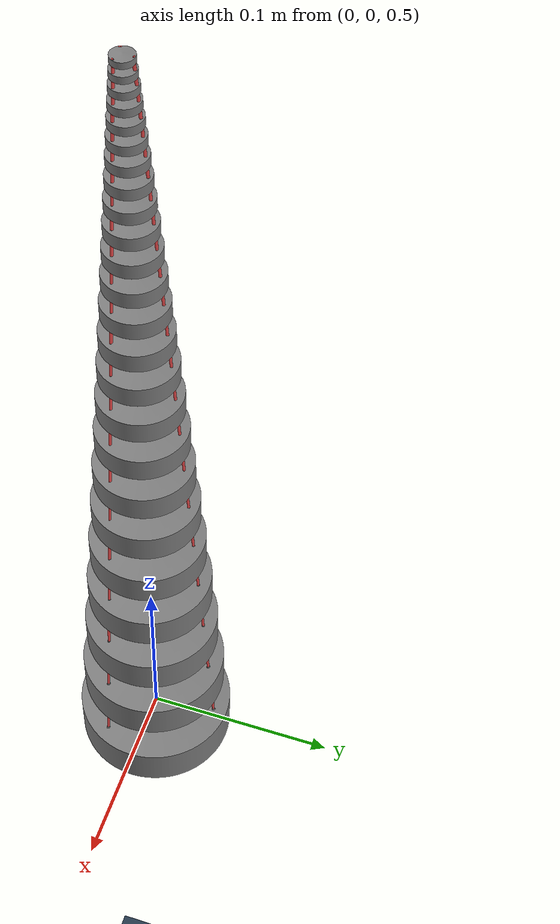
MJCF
<mujoco model="spiral_robot">
  <compiler angle="radian"/>
  <option gravity="0 0 0"/>
  <asset>
    <mesh name="baselink_1" file="baselink.stl" scale="0.001000000 0.001000000 0.001000000"/>
    <mesh name="baselink_2" file="baselink.stl" scale="0.000911774 0.000911774 0.000911774"/>
    <mesh name="baselink_3" file="baselink.stl" scale="0.000831332 0.000831332 0.000831332"/>
    <mesh name="baselink_4" file="baselink.stl" scale="0.000757987 0.000757987 0.000757987"/>
    <mesh name="baselink_5" file="baselink.stl" scale="0.000691113 0.000691113 0.000691113"/>
    <mesh name="baselink_6" file="baselink.stl" scale="0.000630139 0.000630139 0.000630139"/>
    <mesh name="baselink_7" file="baselink.stl" scale="0.000574545 0.000574545 0.000574545"/>
    <mesh name="baselink_8" file="baselink.stl" scale="0.000523855 0.000523855 0.000523855"/>
    <mesh name="baselink_9" file="baselink.stl" scale="0.000477638 0.000477638 0.000477638"/>
    <mesh name="baselink_10" file="baselink.stl" scale="0.000435498 0.000435498 0.000435498"/>
    <mesh name="baselink_11" file="baselink.stl" scale="0.000397076 0.000397076 0.000397076"/>
    <mesh name="baselink_12" file="baselink.stl" scale="0.000362043 0.000362043 0.000362043"/>
    <mesh name="baselink_13" file="baselink.stl" scale="0.000330102 0.000330102 0.000330102"/>
    <mesh name="baselink_14" file="baselink.stl" scale="0.000300978 0.000300978 0.000300978"/>
    <mesh name="baselink_15" file="baselink.stl" scale="0.000274424 0.000274424 0.000274424"/>
    <mesh name="baselink_16" file="baselink.stl" scale="0.000250213 0.000250213 0.000250213"/>
    <mesh name="baselink_17" file="baselink.stl" scale="0.000228138 0.000228138 0.000228138"/>
    <mesh name="baselink_18" file="baselink.stl" scale="0.000208010 0.000208010 0.000208010"/>
    <mesh name="baselink_19" file="baselink.stl" scale="0.000189658 0.000189658 0.000189658"/>
    <mesh name="baselink_20" file="baselink.stl" scale="0.000172926 0.000172926 0.000172926"/>
    <mesh name="baselink_21" file="baselink.stl" scale="0.000157669 0.000157669 0.000157669"/>
    <mesh name="baselink_22" file="baselink.stl" scale="0.000143759 0.000143759 0.000143759"/>
    <mesh name="baselink_23" file="baselink.stl" scale="0.000131075 0.000131075 0.000131075"/>
    <mesh name="baselink_24" file="baselink.stl" scale="0.000119511 0.000119511 0.000119511"/>
    <texture name="texplane" type="2d" builtin="checker" rgb1=".2 .3 .4" rgb2=".1 0.15 0.2" width="512" height="512" mark="cross" markrgb=".8 .8 .8"/>
    <material name="matplane" reflectance="0.3" texture="texplane" texrepeat="1 1" texuniform="true"/>
  </asset>
  <worldbody>
    <geom name="ground" type="plane" size="10 10 1" pos="0 0 0" quat="1 0 0 0" material="matplane" condim="1"/>
    <light pos="1 0.5 0.7" dir="-1 -0.5 -1" directional="true" castshadow="false" diffuse="1 1 1" specular="0.3 0.3 0.3"/>
    <body name="link1" pos="0 0 0.464082120">
      <geom type="mesh" mesh="baselink_1"/>
      <site name="s1_1" pos="0.000000000 0.036394210 0.016795002" size="0.001000 0.001000 0.001000"/>
      <site name="s1_2" pos="0.000000000 0.034423562 0.042801474" size="0.001000 0.001000 0.001000"/>
      <site name="s1_3" pos="-0.031518310 -0.018197105 0.016795002" size="0.001000 0.001000 0.001000"/>
      <site name="s1_4" pos="-0.029811679 -0.017211781 0.042801474" size="0.001000 0.001000 0.001000"/>
      <site name="s1_5" pos="0.031518310 -0.018197105 0.016795002" size="0.001000 0.001000 0.001000"/>
      <site name="s1_6" pos="0.029811679 -0.017211781 0.042801474" size="0.001000 0.001000 0.001000"/>
      <body name="link2" pos="0 0 0.045951152">
        <joint type="ball" stiffness="0.040000" damping="0.020000"/>
        <geom type="mesh" mesh="baselink_2"/>
        <site name="s2_1" pos="0.000000000 0.033183304 0.015313251" size="0.000912 0.000912 0.000912"/>
        <site name="s2_2" pos="0.000000000 0.031386518 0.039025283" size="0.000912 0.000912 0.000912"/>
        <site name="s2_3" pos="-0.028737585 -0.016591652 0.015313251" size="0.000912 0.000912 0.000912"/>
        <site name="s2_4" pos="-0.027181522 -0.015693259 0.039025283" size="0.000912 0.000912 0.000912"/>
        <site name="s2_5" pos="0.028737585 -0.016591652 0.015313251" size="0.000912 0.000912 0.000912"/>
        <site name="s2_6" pos="0.027181522 -0.015693259 0.039025283" size="0.000912 0.000912 0.000912"/>
      <body name="link3" pos="0 0 0.041897079">
        <joint type="ball" stiffness="0.033253" damping="0.018235"/>
        <geom type="mesh" mesh="baselink_3"/>
        <site name="s3_1" pos="0.000000000 0.030255683 0.013962228" size="0.000831 0.000831 0.000831"/>
        <site name="s3_2" pos="0.000000000 0.028617420 0.035582249" size="0.000831 0.000831 0.000831"/>
        <site name="s3_3" pos="-0.026202190 -0.015127842 0.013962228" size="0.000831 0.000831 0.000831"/>
        <site name="s3_4" pos="-0.024783413 -0.014308710 0.035582249" size="0.000831 0.000831 0.000831"/>
        <site name="s3_5" pos="0.026202190 -0.015127842 0.013962228" size="0.000831 0.000831 0.000831"/>
        <site name="s3_6" pos="0.024783413 -0.014308710 0.035582249" size="0.000831 0.000831 0.000831"/>
      <body name="link4" pos="0 0 0.038200679">
        <joint type="ball" stiffness="0.027645" damping="0.016627"/>
        <geom type="mesh" mesh="baselink_4"/>
        <site name="s4_1" pos="0.000000000 0.027586354 0.012730400" size="0.000758 0.000758 0.000758"/>
        <site name="s4_2" pos="0.000000000 0.026092627 0.032442980" size="0.000758 0.000758 0.000758"/>
        <site name="s4_3" pos="-0.023890483 -0.013793177 0.012730400" size="0.000758 0.000758 0.000758"/>
        <site name="s4_4" pos="-0.022596878 -0.013046314 0.032442980" size="0.000758 0.000758 0.000758"/>
        <site name="s4_5" pos="0.023890483 -0.013793177 0.012730400" size="0.000758 0.000758 0.000758"/>
        <site name="s4_6" pos="0.022596878 -0.013046314 0.032442980" size="0.000758 0.000758 0.000758"/>
      <body name="link5" pos="0 0 0.034830396">
        <joint type="ball" stiffness="0.022982" damping="0.015160"/>
        <geom type="mesh" mesh="baselink_5"/>
        <site name="s5_1" pos="0.000000000 0.025152528 0.011607252" size="0.000691 0.000691 0.000691"/>
        <site name="s5_2" pos="0.000000000 0.023790586 0.029580674" size="0.000691 0.000691 0.000691"/>
        <site name="s5_3" pos="-0.021782728 -0.012576264 0.011607252" size="0.000691 0.000691 0.000691"/>
        <site name="s5_4" pos="-0.020603252 -0.011895293 0.029580674" size="0.000691 0.000691 0.000691"/>
        <site name="s5_5" pos="0.021782728 -0.012576264 0.011607252" size="0.000691 0.000691 0.000691"/>
        <site name="s5_6" pos="0.020603252 -0.011895293 0.029580674" size="0.000691 0.000691 0.000691"/>
      <body name="link6" pos="0 0 0.031757459">
        <joint type="ball" stiffness="0.019106" damping="0.013822"/>
        <geom type="mesh" mesh="baselink_6"/>
        <site name="s6_1" pos="0.000000000 0.022933428 0.010583193" size="0.000630 0.000630 0.000630"/>
        <site name="s6_2" pos="0.000000000 0.021691645 0.026970898" size="0.000630 0.000630 0.000630"/>
        <site name="s6_3" pos="-0.019860931 -0.011466714 0.010583193" size="0.000630 0.000630 0.000630"/>
        <site name="s6_4" pos="-0.018785515 -0.010845822 0.026970898" size="0.000630 0.000630 0.000630"/>
        <site name="s6_5" pos="0.019860931 -0.011466714 0.010583193" size="0.000630 0.000630 0.000630"/>
        <site name="s6_6" pos="0.018785515 -0.010845822 0.026970898" size="0.000630 0.000630 0.000630"/>
      <body name="link7" pos="0 0 0.028955634">
        <joint type="ball" stiffness="0.015883" damping="0.012603"/>
        <geom type="mesh" mesh="baselink_7"/>
        <site name="s7_1" pos="0.000000000 0.020910109 0.009649483" size="0.000575 0.000575 0.000575"/>
        <site name="s7_2" pos="0.000000000 0.019777884 0.024591371" size="0.000575 0.000575 0.000575"/>
        <site name="s7_3" pos="-0.018108686 -0.010455055 0.009649483" size="0.000575 0.000575 0.000575"/>
        <site name="s7_4" pos="-0.017128150 -0.009888942 0.024591371" size="0.000575 0.000575 0.000575"/>
        <site name="s7_5" pos="0.018108686 -0.010455055 0.009649483" size="0.000575 0.000575 0.000575"/>
        <site name="s7_6" pos="0.017128150 -0.009888942 0.024591371" size="0.000575 0.000575 0.000575"/>
      <body name="link8" pos="0 0 0.026401003">
        <joint type="ball" stiffness="0.013204" damping="0.011491"/>
        <geom type="mesh" mesh="baselink_8"/>
        <site name="s8_1" pos="0.000000000 0.019065300 0.008798151" size="0.000524 0.000524 0.000524"/>
        <site name="s8_2" pos="0.000000000 0.018032965 0.022421779" size="0.000524 0.000524 0.000524"/>
        <site name="s8_3" pos="-0.016511034 -0.009532650 0.008798151" size="0.000524 0.000524 0.000524"/>
        <site name="s8_4" pos="-0.015617006 -0.009016483 0.022421779" size="0.000524 0.000524 0.000524"/>
        <site name="s8_5" pos="0.016511034 -0.009532650 0.008798151" size="0.000524 0.000524 0.000524"/>
        <site name="s8_6" pos="0.015617006 -0.009016483 0.022421779" size="0.000524 0.000524 0.000524"/>
      <body name="link9" pos="0 0 0.024071755">
        <joint type="ball" stiffness="0.010977" damping="0.010477"/>
        <geom type="mesh" mesh="baselink_9"/>
        <site name="s9_1" pos="0.000000000 0.017383250 0.008021928" size="0.000478 0.000478 0.000478"/>
        <site name="s9_2" pos="0.000000000 0.016441994 0.020443602" size="0.000478 0.000478 0.000478"/>
        <site name="s9_3" pos="-0.015054336 -0.008691625 0.008021928" size="0.000478 0.000478 0.000478"/>
        <site name="s9_4" pos="-0.014239185 -0.008220997 0.020443602" size="0.000478 0.000478 0.000478"/>
        <site name="s9_5" pos="0.015054336 -0.008691625 0.008021928" size="0.000478 0.000478 0.000478"/>
        <site name="s9_6" pos="0.014239185 -0.008220997 0.020443602" size="0.000478 0.000478 0.000478"/>
      <body name="link10" pos="0 0 0.021948007">
        <joint type="ball" stiffness="0.009126" damping="0.009553"/>
        <geom type="mesh" mesh="baselink_10"/>
        <site name="s10_1" pos="0.000000000 0.015849600 0.007314187" size="0.000435 0.000435 0.000435"/>
        <site name="s10_2" pos="0.000000000 0.014991387 0.018639950" size="0.000435 0.000435 0.000435"/>
        <site name="s10_3" pos="-0.013726156 -0.007924800 0.007314187" size="0.000435 0.000435 0.000435"/>
        <site name="s10_4" pos="-0.012982922 -0.007495694 0.018639950" size="0.000435 0.000435 0.000435"/>
        <site name="s10_5" pos="0.013726156 -0.007924800 0.007314187" size="0.000435 0.000435 0.000435"/>
        <site name="s10_6" pos="0.012982922 -0.007495694 0.018639950" size="0.000435 0.000435 0.000435"/>
      <body name="link11" pos="0 0 0.020011628">
        <joint type="ball" stiffness="0.007586" damping="0.008710"/>
        <geom type="mesh" mesh="baselink_11"/>
        <site name="s11_1" pos="0.000000000 0.014451258 0.006668888" size="0.000397 0.000397 0.000397"/>
        <site name="s11_2" pos="0.000000000 0.013668761 0.016995427" size="0.000397 0.000397 0.000397"/>
        <site name="s11_3" pos="-0.012515156 -0.007225629 0.006668888" size="0.000397 0.000397 0.000397"/>
        <site name="s11_4" pos="-0.011837494 -0.006834381 0.016995427" size="0.000397 0.000397 0.000397"/>
        <site name="s11_5" pos="0.012515156 -0.007225629 0.006668888" size="0.000397 0.000397 0.000397"/>
        <site name="s11_6" pos="0.011837494 -0.006834381 0.016995427" size="0.000397 0.000397 0.000397"/>
      <body name="link12" pos="0 0 0.018246088">
        <joint type="ball" stiffness="0.006307" damping="0.007942"/>
        <geom type="mesh" mesh="baselink_12"/>
        <site name="s12_1" pos="0.000000000 0.013176285 0.006080520" size="0.000362 0.000362 0.000362"/>
        <site name="s12_2" pos="0.000000000 0.012462825 0.015495993" size="0.000362 0.000362 0.000362"/>
        <site name="s12_3" pos="-0.011410998 -0.006588143 0.006080520" size="0.000362 0.000362 0.000362"/>
        <site name="s12_4" pos="-0.010793123 -0.006231412 0.015495993" size="0.000362 0.000362 0.000362"/>
        <site name="s12_5" pos="0.011410998 -0.006588143 0.006080520" size="0.000362 0.000362 0.000362"/>
        <site name="s12_6" pos="0.010793123 -0.006231412 0.015495993" size="0.000362 0.000362 0.000362"/>
      <body name="link13" pos="0 0 0.016636313">
        <joint type="ball" stiffness="0.005243" damping="0.007241"/>
        <geom type="mesh" mesh="baselink_13"/>
        <site name="s13_1" pos="0.000000000 0.012013798 0.005544062" size="0.000330 0.000330 0.000330"/>
        <site name="s13_2" pos="0.000000000 0.011363283 0.014128848" size="0.000330 0.000330 0.000330"/>
        <site name="s13_3" pos="-0.010404254 -0.006006899 0.005544062" size="0.000330 0.000330 0.000330"/>
        <site name="s13_4" pos="-0.009840892 -0.005681642 0.014128848" size="0.000330 0.000330 0.000330"/>
        <site name="s13_5" pos="0.010404254 -0.006006899 0.005544062" size="0.000330 0.000330 0.000330"/>
        <site name="s13_6" pos="0.009840892 -0.005681642 0.014128848" size="0.000330 0.000330 0.000330"/>
      <body name="link14" pos="0 0 0.015168563">
        <joint type="ball" stiffness="0.004359" damping="0.006602"/>
        <geom type="mesh" mesh="baselink_14"/>
        <site name="s14_1" pos="0.000000000 0.010953872 0.005054933" size="0.000301 0.000301 0.000301"/>
        <site name="s14_2" pos="0.000000000 0.010360749 0.012882320" size="0.000301 0.000301 0.000301"/>
        <site name="s14_3" pos="-0.009486331 -0.005476936 0.005054933" size="0.000301 0.000301 0.000301"/>
        <site name="s14_4" pos="-0.008972672 -0.005180375 0.012882320" size="0.000301 0.000301 0.000301"/>
        <site name="s14_5" pos="0.009486331 -0.005476936 0.005054933" size="0.000301 0.000301 0.000301"/>
        <site name="s14_6" pos="0.008972672 -0.005180375 0.012882320" size="0.000301 0.000301 0.000301"/>
      <body name="link15" pos="0 0 0.013830305">
        <joint type="ball" stiffness="0.003624" damping="0.006020"/>
        <geom type="mesh" mesh="baselink_15"/>
        <site name="s15_1" pos="0.000000000 0.009987459 0.004608958" size="0.000274 0.000274 0.000274"/>
        <site name="s15_2" pos="0.000000000 0.009446665 0.011745768" size="0.000274 0.000274 0.000274"/>
        <site name="s15_3" pos="-0.008649393 -0.004993729 0.004608958" size="0.000274 0.000274 0.000274"/>
        <site name="s15_4" pos="-0.008181052 -0.004723332 0.011745768" size="0.000274 0.000274 0.000274"/>
        <site name="s15_5" pos="0.008649393 -0.004993729 0.004608958" size="0.000274 0.000274 0.000274"/>
        <site name="s15_6" pos="0.008181052 -0.004723332 0.011745768" size="0.000274 0.000274 0.000274"/>
      <body name="link16" pos="0 0 0.012610117">
        <joint type="ball" stiffness="0.003012" damping="0.005488"/>
        <geom type="mesh" mesh="baselink_16"/>
        <site name="s16_1" pos="0.000000000 0.009106308 0.004202329" size="0.000250 0.000250 0.000250"/>
        <site name="s16_2" pos="0.000000000 0.008613226 0.010709489" size="0.000250 0.000250 0.000250"/>
        <site name="s16_3" pos="-0.007886294 -0.004553154 0.004202329" size="0.000250 0.000250 0.000250"/>
        <site name="s16_4" pos="-0.007459272 -0.004306613 0.010709489" size="0.000250 0.000250 0.000250"/>
        <site name="s16_5" pos="0.007886294 -0.004553154 0.004202329" size="0.000250 0.000250 0.000250"/>
        <site name="s16_6" pos="0.007459272 -0.004306613 0.010709489" size="0.000250 0.000250 0.000250"/>
      <body name="link17" pos="0 0 0.011497580">
        <joint type="ball" stiffness="0.002504" damping="0.005004"/>
        <geom type="mesh" mesh="baselink_17"/>
        <site name="s17_1" pos="0.000000000 0.008302897 0.003831576" size="0.000228 0.000228 0.000228"/>
        <site name="s17_2" pos="0.000000000 0.007853318 0.009764637" size="0.000228 0.000228 0.000228"/>
        <site name="s17_3" pos="-0.007190520 -0.004151449 0.003831576" size="0.000228 0.000228 0.000228"/>
        <site name="s17_4" pos="-0.006801173 -0.003926659 0.009764637" size="0.000228 0.000228 0.000228"/>
        <site name="s17_5" pos="0.007190520 -0.004151449 0.003831576" size="0.000228 0.000228 0.000228"/>
        <site name="s17_6" pos="0.006801173 -0.003926659 0.009764637" size="0.000228 0.000228 0.000228"/>
      <body name="link18" pos="0 0 0.010483198">
        <joint type="ball" stiffness="0.002082" damping="0.004563"/>
        <geom type="mesh" mesh="baselink_18"/>
        <site name="s18_1" pos="0.000000000 0.007570368 0.003493532" size="0.000208 0.000208 0.000208"/>
        <site name="s18_2" pos="0.000000000 0.007160453 0.008903145" size="0.000208 0.000208 0.000208"/>
        <site name="s18_3" pos="-0.006556131 -0.003785184 0.003493532" size="0.000208 0.000208 0.000208"/>
        <site name="s18_4" pos="-0.006201134 -0.003580227 0.008903145" size="0.000208 0.000208 0.000208"/>
        <site name="s18_5" pos="0.006556131 -0.003785184 0.003493532" size="0.000208 0.000208 0.000208"/>
        <site name="s18_6" pos="0.006201134 -0.003580227 0.008903145" size="0.000208 0.000208 0.000208"/>
      <body name="link19" pos="0 0 0.009558310">
        <joint type="ball" stiffness="0.001731" damping="0.004160"/>
        <geom type="mesh" mesh="baselink_19"/>
        <site name="s19_1" pos="0.000000000 0.006902467 0.003185313" size="0.000190 0.000190 0.000190"/>
        <site name="s19_2" pos="0.000000000 0.006528717 0.008117658" size="0.000190 0.000190 0.000190"/>
        <site name="s19_3" pos="-0.005977712 -0.003451233 0.003185313" size="0.000190 0.000190 0.000190"/>
        <site name="s19_4" pos="-0.005654035 -0.003264358 0.008117658" size="0.000190 0.000190 0.000190"/>
        <site name="s19_5" pos="0.005977712 -0.003451233 0.003185313" size="0.000190 0.000190 0.000190"/>
        <site name="s19_6" pos="0.005654035 -0.003264358 0.008117658" size="0.000190 0.000190 0.000190"/>
      <body name="link20" pos="0 0 0.008715021">
        <joint type="ball" stiffness="0.001439" damping="0.003793"/>
        <geom type="mesh" mesh="baselink_20"/>
        <site name="s20_1" pos="0.000000000 0.006293492 0.002904286" size="0.000173 0.000173 0.000173"/>
        <site name="s20_2" pos="0.000000000 0.005952716 0.007401472" size="0.000173 0.000173 0.000173"/>
        <site name="s20_3" pos="-0.005450324 -0.003146746 0.002904286" size="0.000173 0.000173 0.000173"/>
        <site name="s20_4" pos="-0.005155203 -0.002976358 0.007401472" size="0.000173 0.000173 0.000173"/>
        <site name="s20_5" pos="0.005450324 -0.003146746 0.002904286" size="0.000173 0.000173 0.000173"/>
        <site name="s20_6" pos="0.005155203 -0.002976358 0.007401472" size="0.000173 0.000173 0.000173"/>
      <body name="link21" pos="0 0 0.007946132">
        <joint type="ball" stiffness="0.001196" damping="0.003459"/>
        <geom type="mesh" mesh="baselink_21"/>
        <site name="s21_1" pos="0.000000000 0.005738244 0.002648054" size="0.000158 0.000158 0.000158"/>
        <site name="s21_2" pos="0.000000000 0.005427533 0.006748472" size="0.000158 0.000158 0.000158"/>
        <site name="s21_3" pos="-0.004969465 -0.002869122 0.002648054" size="0.000158 0.000158 0.000158"/>
        <site name="s21_4" pos="-0.004700382 -0.002713767 0.006748472" size="0.000158 0.000158 0.000158"/>
        <site name="s21_5" pos="0.004969465 -0.002869122 0.002648054" size="0.000158 0.000158 0.000158"/>
        <site name="s21_6" pos="0.004700382 -0.002713767 0.006748472" size="0.000158 0.000158 0.000158"/>
      <body name="link22" pos="0 0 0.007245079">
        <joint type="ball" stiffness="0.000994" damping="0.003153"/>
        <geom type="mesh" mesh="baselink_22"/>
        <site name="s22_1" pos="0.000000000 0.005231983 0.002414427" size="0.000144 0.000144 0.000144"/>
        <site name="s22_2" pos="0.000000000 0.004948685 0.006153083" size="0.000144 0.000144 0.000144"/>
        <site name="s22_3" pos="-0.004531030 -0.002615992 0.002414427" size="0.000144 0.000144 0.000144"/>
        <site name="s22_4" pos="-0.004285687 -0.002474343 0.006153083" size="0.000144 0.000144 0.000144"/>
        <site name="s22_5" pos="0.004531030 -0.002615992 0.002414427" size="0.000144 0.000144 0.000144"/>
        <site name="s22_6" pos="0.004285687 -0.002474343 0.006153083" size="0.000144 0.000144 0.000144"/>
      <body name="link23" pos="0 0 0.006605876">
        <joint type="ball" stiffness="0.000827" damping="0.002875"/>
        <geom type="mesh" mesh="baselink_23"/>
        <site name="s23_1" pos="0.000000000 0.004770388 0.002201413" size="0.000131 0.000131 0.000131"/>
        <site name="s23_2" pos="0.000000000 0.004512084 0.005610223" size="0.000131 0.000131 0.000131"/>
        <site name="s23_3" pos="-0.004131277 -0.002385194 0.002201413" size="0.000131 0.000131 0.000131"/>
        <site name="s23_4" pos="-0.003907579 -0.002256042 0.005610223" size="0.000131 0.000131 0.000131"/>
        <site name="s23_5" pos="0.004131277 -0.002385194 0.002201413" size="0.000131 0.000131 0.000131"/>
        <site name="s23_6" pos="0.003907579 -0.002256042 0.005610223" size="0.000131 0.000131 0.000131"/>
      <body name="link24" pos="0 0 0.006023068">
        <joint type="ball" stiffness="0.000687" damping="0.002622"/>
        <geom type="mesh" mesh="baselink_24"/>
        <site name="s24_1" pos="0.000000000 0.004349517 0.002007191" size="0.000120 0.000120 0.000120"/>
        <site name="s24_2" pos="0.000000000 0.004114002 0.005115257" size="0.000120 0.000120 0.000120"/>
        <site name="s24_3" pos="-0.003766792 -0.002174758 0.002007191" size="0.000120 0.000120 0.000120"/>
        <site name="s24_4" pos="-0.003562830 -0.002057001 0.005115257" size="0.000120 0.000120 0.000120"/>
        <site name="s24_5" pos="0.003766792 -0.002174758 0.002007191" size="0.000120 0.000120 0.000120"/>
        <site name="s24_6" pos="0.003562830 -0.002057001 0.005115257" size="0.000120 0.000120 0.000120"/>
      </body>
      </body>
      </body>
      </body>
      </body>
      </body>
      </body>
      </body>
      </body>
      </body>
      </body>
      </body>
      </body>
      </body>
      </body>
      </body>
      </body>
      </body>
      </body>
      </body>
      </body>
      </body>
      </body>
    </body>
  </worldbody>
  <tendon>
    <spatial name="tendon1" width="0.0007" frictionloss="0.1" rgba=".95 .3 .3 1" limited="true" range="0.185632848 1.160205301">
      <site site="s1_1"/>
      <site site="s1_2"/>
      <site site="s2_1"/>
      <site site="s2_2"/>
      <site site="s3_1"/>
      <site site="s3_2"/>
      <site site="s4_1"/>
      <site site="s4_2"/>
      <site site="s5_1"/>
      <site site="s5_2"/>
      <site site="s6_1"/>
      <site site="s6_2"/>
      <site site="s7_1"/>
      <site site="s7_2"/>
      <site site="s8_1"/>
      <site site="s8_2"/>
      <site site="s9_1"/>
      <site site="s9_2"/>
      <site site="s10_1"/>
      <site site="s10_2"/>
      <site site="s11_1"/>
      <site site="s11_2"/>
      <site site="s12_1"/>
      <site site="s12_2"/>
      <site site="s13_1"/>
      <site site="s13_2"/>
      <site site="s14_1"/>
      <site site="s14_2"/>
      <site site="s15_1"/>
      <site site="s15_2"/>
      <site site="s16_1"/>
      <site site="s16_2"/>
      <site site="s17_1"/>
      <site site="s17_2"/>
      <site site="s18_1"/>
      <site site="s18_2"/>
      <site site="s19_1"/>
      <site site="s19_2"/>
      <site site="s20_1"/>
      <site site="s20_2"/>
      <site site="s21_1"/>
      <site site="s21_2"/>
      <site site="s22_1"/>
      <site site="s22_2"/>
      <site site="s23_1"/>
      <site site="s23_2"/>
      <site site="s24_1"/>
      <site site="s24_2"/>
    </spatial>
    <spatial name="tendon2" width="0.0007" frictionloss="0.1" rgba=".95 .3 .3 1" limited="true" range="0.185632848 1.160205301">
      <site site="s1_3"/>
      <site site="s1_4"/>
      <site site="s2_3"/>
      <site site="s2_4"/>
      <site site="s3_3"/>
      <site site="s3_4"/>
      <site site="s4_3"/>
      <site site="s4_4"/>
      <site site="s5_3"/>
      <site site="s5_4"/>
      <site site="s6_3"/>
      <site site="s6_4"/>
      <site site="s7_3"/>
      <site site="s7_4"/>
      <site site="s8_3"/>
      <site site="s8_4"/>
      <site site="s9_3"/>
      <site site="s9_4"/>
      <site site="s10_3"/>
      <site site="s10_4"/>
      <site site="s11_3"/>
      <site site="s11_4"/>
      <site site="s12_3"/>
      <site site="s12_4"/>
      <site site="s13_3"/>
      <site site="s13_4"/>
      <site site="s14_3"/>
      <site site="s14_4"/>
      <site site="s15_3"/>
      <site site="s15_4"/>
      <site site="s16_3"/>
      <site site="s16_4"/>
      <site site="s17_3"/>
      <site site="s17_4"/>
      <site site="s18_3"/>
      <site site="s18_4"/>
      <site site="s19_3"/>
      <site site="s19_4"/>
      <site site="s20_3"/>
      <site site="s20_4"/>
      <site site="s21_3"/>
      <site site="s21_4"/>
      <site site="s22_3"/>
      <site site="s22_4"/>
      <site site="s23_3"/>
      <site site="s23_4"/>
      <site site="s24_3"/>
      <site site="s24_4"/>
    </spatial>
    <spatial name="tendon3" width="0.0007" frictionloss="0.1" rgba=".95 .3 .3 1" limited="true" range="0.185632848 1.160205301">
      <site site="s1_5"/>
      <site site="s1_6"/>
      <site site="s2_5"/>
      <site site="s2_6"/>
      <site site="s3_5"/>
      <site site="s3_6"/>
      <site site="s4_5"/>
      <site site="s4_6"/>
      <site site="s5_5"/>
      <site site="s5_6"/>
      <site site="s6_5"/>
      <site site="s6_6"/>
      <site site="s7_5"/>
      <site site="s7_6"/>
      <site site="s8_5"/>
      <site site="s8_6"/>
      <site site="s9_5"/>
      <site site="s9_6"/>
      <site site="s10_5"/>
      <site site="s10_6"/>
      <site site="s11_5"/>
      <site site="s11_6"/>
      <site site="s12_5"/>
      <site site="s12_6"/>
      <site site="s13_5"/>
      <site site="s13_6"/>
      <site site="s14_5"/>
      <site site="s14_6"/>
      <site site="s15_5"/>
      <site site="s15_6"/>
      <site site="s16_5"/>
      <site site="s16_6"/>
      <site site="s17_5"/>
      <site site="s17_6"/>
      <site site="s18_5"/>
      <site site="s18_6"/>
      <site site="s19_5"/>
      <site site="s19_6"/>
      <site site="s20_5"/>
      <site site="s20_6"/>
      <site site="s21_5"/>
      <site site="s21_6"/>
      <site site="s22_5"/>
      <site site="s22_6"/>
      <site site="s23_5"/>
      <site site="s23_6"/>
      <site site="s24_5"/>
      <site site="s24_6"/>
    </spatial>
  </tendon>
  <actuator>
    <muscle name="act1" tendon="tendon1" ctrllimited="true" ctrlrange="0 1" force="5" lengthrange="0.185632848 1.160205301"/>
    <muscle name="act2" tendon="tendon2" ctrllimited="true" ctrlrange="0 1" force="5" lengthrange="0.185632848 1.160205301"/>
    <muscle name="act3" tendon="tendon3" ctrllimited="true" ctrlrange="0 1" force="5" lengthrange="0.185632848 1.160205301"/>
  </actuator>
</mujoco>
